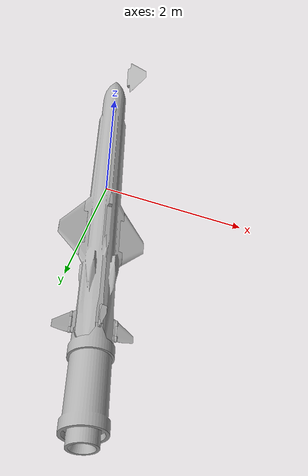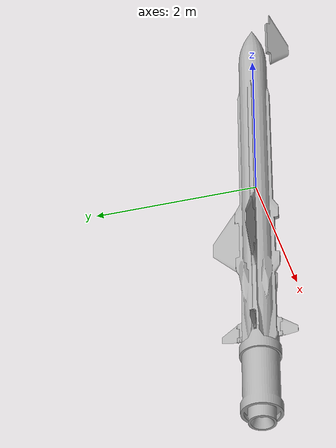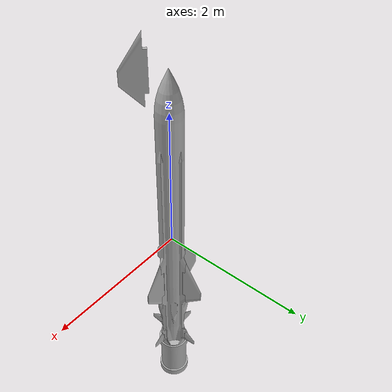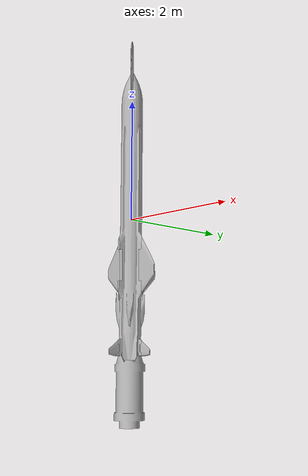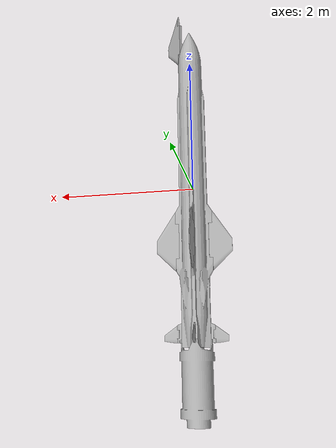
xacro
<?xml version="1.0" ?>
<robot name="exocetMM40" xmlns:xacro="http://www.ros.org/wiki/xacro">

<xacro:include filename="$(find exocet_mm40_description)/urdf/materials.xacro" />
<xacro:include filename="$(find exocet_mm40_description)/urdf/exocetMM40.trans" />
<xacro:include filename="$(find exocet_mm40_description)/urdf/exocetMM40.gazebo" />
<link name="missile_body">
  <inertial>
    <origin xyz="-1.4542551737212967e-07 3.654620797194591e-07 3.282550688316852" rpy="0 0 0"/>
    <mass value="3587.9487221387226"/>
    <inertia ixx="5872.45367" iyy="5872.45367" izz="59.942144" ixy="-0.0" iyz="-0.0" ixz="0.0"/>
  </inertial>
  <visual>
    <origin xyz="0 0 0" rpy="0 0 0"/>
    <geometry>
      <mesh filename="package://exocet_mm40_description/meshes/base_link.stl" scale="0.001 0.001 0.001"/>
    </geometry>
    <material name="silver"/>
  </visual>
  <collision>
    <origin xyz="0 0 0" rpy="0 0 0"/>
    <geometry>
      <mesh filename="package://exocet_mm40_description/meshes/base_link.stl" scale="0.001 0.001 0.001"/>
    </geometry>
  </collision>
</link>

<link name="Fin_1">
  <inertial>
    <origin xyz="-0.04207063686395979 0.042070952020477254 -0.016310158349904347" rpy="0 0 0"/>
    <mass value="3.7760500387858813"/>
    <inertia ixx="0.012879" iyy="0.012879" izz="0.008976" ixy="0.004366" iyz="0.001812" ixz="-0.001812"/>
  </inertial>
  <visual>
    <origin xyz="0.17708 -0.177106 -1.216174" rpy="0 0 0"/>
    <geometry>
      <mesh filename="package://exocet_mm40_description/meshes/Fin_1.stl" scale="0.001 0.001 0.001"/>
    </geometry>
    <material name="silver"/>
  </visual>
  <collision>
    <origin xyz="0.17708 -0.177106 -1.216174" rpy="0 0 0"/>
    <geometry>
      <mesh filename="package://exocet_mm40_description/meshes/Fin_1.stl" scale="0.001 0.001 0.001"/>
    </geometry>
  </collision>
</link>

<link name="FinHolder_1">
  <inertial>
    <origin xyz="-0.025727368252543487 0.025730237574824122 0.010891838967306722" rpy="0 0 0"/>
    <mass value="2.2777645968314193"/>
    <inertia ixx="0.014349" iyy="0.014349" izz="0.0009" ixy="0.000349" iyz="0.0001" ixz="-0.0001"/>
  </inertial>
  <visual>
    <origin xyz="0.13435 -0.134351 -1.216174" rpy="0 0 0"/>
    <geometry>
      <mesh filename="package://exocet_mm40_description/meshes/FinHolder_1.stl" scale="0.001 0.001 0.001"/>
    </geometry>
    <material name="silver"/>
  </visual>
  <collision>
    <origin xyz="0.13435 -0.134351 -1.216174" rpy="0 0 0"/>
    <geometry>
      <mesh filename="package://exocet_mm40_description/meshes/FinHolder_1.stl" scale="0.001 0.001 0.001"/>
    </geometry>
  </collision>
</link>

<link name="Fin_4">
  <inertial>
    <origin xyz="-0.04207073198379488 -0.042070125976482464 -0.016310158349904347" rpy="0 0 0"/>
    <mass value="3.7760500387858813"/>
    <inertia ixx="0.012879" iyy="0.012879" izz="0.008976" ixy="-0.004366" iyz="-0.001812" ixz="-0.001812"/>
  </inertial>
  <visual>
    <origin xyz="0.177106 0.17708 -1.216174" rpy="0 0 0"/>
    <geometry>
      <mesh filename="package://exocet_mm40_description/meshes/Fin_4.stl" scale="0.001 0.001 0.001"/>
    </geometry>
    <material name="silver"/>
  </visual>
  <collision>
    <origin xyz="0.177106 0.17708 -1.216174" rpy="0 0 0"/>
    <geometry>
      <mesh filename="package://exocet_mm40_description/meshes/Fin_4.stl" scale="0.001 0.001 0.001"/>
    </geometry>
  </collision>
</link>

<link name="FinHolder_4">
  <inertial>
    <origin xyz="-0.025731017538143275 -0.025726857365065164 0.010891838967306722" rpy="0 0 0"/>
    <mass value="2.2777645968314193"/>
    <inertia ixx="0.014349" iyy="0.014349" izz="0.0009" ixy="-0.000349" iyz="-0.0001" ixz="-0.0001"/>
  </inertial>
  <visual>
    <origin xyz="0.13435 0.13435 -1.216174" rpy="0 0 0"/>
    <geometry>
      <mesh filename="package://exocet_mm40_description/meshes/FinHolder_4.stl" scale="0.001 0.001 0.001"/>
    </geometry>
    <material name="silver"/>
  </visual>
  <collision>
    <origin xyz="0.13435 0.13435 -1.216174" rpy="0 0 0"/>
    <geometry>
      <mesh filename="package://exocet_mm40_description/meshes/FinHolder_4.stl" scale="0.001 0.001 0.001"/>
    </geometry>
  </collision>
</link>

<link name="Fin_3">
  <inertial>
    <origin xyz="0.04207016492600643 -0.04207040218347563 -0.016310158349879478" rpy="0 0 0"/>
    <mass value="3.7760500387858813"/>
    <inertia ixx="0.012879" iyy="0.012879" izz="0.008976" ixy="0.004366" iyz="-0.001812" ixz="0.001812"/>
  </inertial>
  <visual>
    <origin xyz="-0.177081 0.177105 -1.216174" rpy="0 0 0"/>
    <geometry>
      <mesh filename="package://exocet_mm40_description/meshes/Fin_3.stl" scale="0.001 0.001 0.001"/>
    </geometry>
    <material name="silver"/>
  </visual>
  <collision>
    <origin xyz="-0.177081 0.177105 -1.216174" rpy="0 0 0"/>
    <geometry>
      <mesh filename="package://exocet_mm40_description/meshes/Fin_3.stl" scale="0.001 0.001 0.001"/>
    </geometry>
  </collision>
</link>

<link name="FinHolder_3">
  <inertial>
    <origin xyz="0.025727077401745596 -0.025730506650665064 0.010891838967325151" rpy="0 0 0"/>
    <mass value="2.2777645968314193"/>
    <inertia ixx="0.014349" iyy="0.014349" izz="0.0009" ixy="0.000349" iyz="-0.0001" ixz="0.0001"/>
  </inertial>
  <visual>
    <origin xyz="-0.13435 0.13435 -1.216174" rpy="0 0 0"/>
    <geometry>
      <mesh filename="package://exocet_mm40_description/meshes/FinHolder_3.stl" scale="0.001 0.001 0.001"/>
    </geometry>
    <material name="silver"/>
  </visual>
  <collision>
    <origin xyz="-0.13435 0.13435 -1.216174" rpy="0 0 0"/>
    <geometry>
      <mesh filename="package://exocet_mm40_description/meshes/FinHolder_3.stl" scale="0.001 0.001 0.001"/>
    </geometry>
  </collision>
</link>

<link name="Fin_2">
  <inertial>
    <origin xyz="0.04207044113299932 0.042070856900641496 -0.016310158349879478" rpy="0 0 0"/>
    <mass value="3.7760500387858813"/>
    <inertia ixx="0.012879" iyy="0.012879" izz="0.008976" ixy="-0.004366" iyz="0.001812" ixz="0.001812"/>
  </inertial>
  <visual>
    <origin xyz="-0.177106 -0.17708 -1.216174" rpy="0 0 0"/>
    <geometry>
      <mesh filename="package://exocet_mm40_description/meshes/Fin_2.stl" scale="0.001 0.001 0.001"/>
    </geometry>
    <material name="silver"/>
  </visual>
  <collision>
    <origin xyz="-0.177106 -0.17708 -1.216174" rpy="0 0 0"/>
    <geometry>
      <mesh filename="package://exocet_mm40_description/meshes/Fin_2.stl" scale="0.001 0.001 0.001"/>
    </geometry>
  </collision>
</link>

<link name="FinHolder_2">
  <inertial>
    <origin xyz="0.025730726687345384 0.025726588289224195 0.010891838967325151" rpy="0 0 0"/>
    <mass value="2.2777645968314193"/>
    <inertia ixx="0.014349" iyy="0.014349" izz="0.0009" ixy="-0.000349" iyz="0.0001" ixz="0.0001"/>
  </inertial>
  <visual>
    <origin xyz="-0.13435 -0.134351 -1.216174" rpy="0 0 0"/>
    <geometry>
      <mesh filename="package://exocet_mm40_description/meshes/FinHolder_2.stl" scale="0.001 0.001 0.001"/>
    </geometry>
    <material name="silver"/>
  </visual>
  <collision>
    <origin xyz="-0.13435 -0.134351 -1.216174" rpy="0 0 0"/>
    <geometry>
      <mesh filename="package://exocet_mm40_description/meshes/FinHolder_2.stl" scale="0.001 0.001 0.001"/>
    </geometry>
  </collision>
</link>

<link name="Wing1_1">
  <inertial>
    <origin xyz="-0.06401343964815456 0.0640136633314072 -0.021747597482814296" rpy="0 0 0"/>
    <mass value="42.48976628506711"/>
    <inertia ixx="1.399284" iyy="1.399284" izz="0.250002" ixy="0.120279" iyz="0.044379" ixz="-0.044379"/>
  </inertial>
  <visual>
    <origin xyz="0.1681 -0.1681 -2.521299" rpy="0 0 0"/>
    <geometry>
      <mesh filename="package://exocet_mm40_description/meshes/Wing1_1.stl" scale="0.001 0.001 0.001"/>
    </geometry>
    <material name="silver"/>
  </visual>
  <collision>
    <origin xyz="0.1681 -0.1681 -2.521299" rpy="0 0 0"/>
    <geometry>
      <mesh filename="package://exocet_mm40_description/meshes/Wing1_1.stl" scale="0.001 0.001 0.001"/>
    </geometry>
  </collision>
</link>

<link name="Wing2_1">
  <inertial>
    <origin xyz="-0.06401349424860628 -0.06401389618581307 -0.021747636109048507" rpy="0 0 0"/>
    <mass value="42.48975683460527"/>
    <inertia ixx="1.399282" iyy="1.399282" izz="0.250002" ixy="-0.12028" iyz="-0.044379" ixz="-0.044379"/>
  </inertial>
  <visual>
    <origin xyz="0.1681 0.168099 -2.521299" rpy="0 0 0"/>
    <geometry>
      <mesh filename="package://exocet_mm40_description/meshes/Wing2_1.stl" scale="0.001 0.001 0.001"/>
    </geometry>
    <material name="silver"/>
  </visual>
  <collision>
    <origin xyz="0.1681 0.168099 -2.521299" rpy="0 0 0"/>
    <geometry>
      <mesh filename="package://exocet_mm40_description/meshes/Wing2_1.stl" scale="0.001 0.001 0.001"/>
    </geometry>
  </collision>
</link>

<link name="Wing3_1">
  <inertial>
    <origin xyz="0.0640141532027112 0.06401367009330869 -0.021747611087639562" rpy="0 0 0"/>
    <mass value="42.48976289872378"/>
    <inertia ixx="1.399283" iyy="1.399283" izz="0.250002" ixy="-0.120279" iyz="0.044379" ixz="0.044379"/>
  </inertial>
  <visual>
    <origin xyz="-0.168099 -0.1681 -2.521299" rpy="0 0 0"/>
    <geometry>
      <mesh filename="package://exocet_mm40_description/meshes/Wing3_1.stl" scale="0.001 0.001 0.001"/>
    </geometry>
    <material name="silver"/>
  </visual>
  <collision>
    <origin xyz="-0.168099 -0.1681 -2.521299" rpy="0 0 0"/>
    <geometry>
      <mesh filename="package://exocet_mm40_description/meshes/Wing3_1.stl" scale="0.001 0.001 0.001"/>
    </geometry>
  </collision>
</link>

<link name="Wing4_1">
  <inertial>
    <origin xyz="0.06401417767169987 -0.06401392569423553 -0.021747543358718424" rpy="0 0 0"/>
    <mass value="42.489775944812806"/>
    <inertia ixx="1.399285" iyy="1.399285" izz="0.250002" ixy="0.120279" iyz="-0.044379" ixz="0.04438"/>
  </inertial>
  <visual>
    <origin xyz="-0.168099 0.168099 -2.521299" rpy="0 0 0"/>
    <geometry>
      <mesh filename="package://exocet_mm40_description/meshes/Wing4_1.stl" scale="0.001 0.001 0.001"/>
    </geometry>
    <material name="silver"/>
  </visual>
  <collision>
    <origin xyz="-0.168099 0.168099 -2.521299" rpy="0 0 0"/>
    <geometry>
      <mesh filename="package://exocet_mm40_description/meshes/Wing4_1.stl" scale="0.001 0.001 0.001"/>
    </geometry>
  </collision>
</link>

<link name="Booster_1">
  <inertial>
    <origin xyz="-1.4542535988779183e-07 3.6546207951460027e-07 -0.4892253805514363" rpy="0 0 0"/>
    <mass value="1075.2738598517735"/>
    <inertia ixx="93.247118" iyy="93.247118" izz="25.896806" ixy="0.0" iyz="0.0" ixz="0.0"/>
  </inertial>
  <visual>
    <origin xyz="0.0 -0.0 -1.036174" rpy="0 0 0"/>
    <geometry>
      <mesh filename="package://exocet_mm40_description/meshes/Booster_1.stl" scale="0.001 0.001 0.001"/>
    </geometry>
    <material name="silver"/>
  </visual>
  <collision>
    <origin xyz="0.0 -0.0 -1.036174" rpy="0 0 0"/>
    <geometry>
      <mesh filename="package://exocet_mm40_description/meshes/Booster_1.stl" scale="0.001 0.001 0.001"/>
    </geometry>
  </collision>
</link>
<xacro:property name="fins_limit_absolute" value="0.349066" />
<joint name="fins_fold1" type="revolute">
  <origin xyz="-0.04273 0.042755 0.0" rpy="0 0 0"/>
  <parent link="FinHolder_1"/>
  <child link="Fin_1"/>
  <axis xyz="0.0 -0.0 -1.0"/>
  <limit upper="2.094395" lower="-2.094395" effort="100" velocity="100"/>
</joint>

<joint name="fins_rev1" type="revolute">
  <origin xyz="-0.13435 0.134351 1.216174" rpy="0 0 0"/>
  <parent link="missile_body"/>
  <child link="FinHolder_1"/>
  <axis xyz="-0.707107 0.707107 -0.0"/>
  <limit upper="${fins_limit_absolute}" lower="${-1*fins_limit_absolute}" effort="100" velocity="100"/>
</joint>

<joint name="fins_fold2" type="revolute">
  <origin xyz="-0.042756 -0.04273 0.0" rpy="0 0 0"/>
  <parent link="FinHolder_4"/>
  <child link="Fin_4"/>
  <axis xyz="0.0 0.0 -1.0"/>
  <limit upper="2.094395" lower="-2.094395" effort="100" velocity="100"/>
</joint>

<joint name="fins_rev2" type="revolute">
  <origin xyz="-0.13435 -0.13435 1.216174" rpy="0 0 0"/>
  <parent link="missile_body"/>
  <child link="FinHolder_4"/>
  <axis xyz="-0.707107 -0.707107 -0.0"/>
  <limit upper="${fins_limit_absolute}" lower="${-1*fins_limit_absolute}" effort="100" velocity="100"/>
</joint>

<joint name="fins_fold3" type="revolute">
  <origin xyz="0.042731 -0.042755 0.0" rpy="0 0 0"/>
  <parent link="FinHolder_3"/>
  <child link="Fin_3"/>
  <axis xyz="0.0 0.0 -1.0"/>
  <limit upper="2.094395" lower="-2.094395" effort="100" velocity="100"/>
</joint>

<joint name="fins_rev3" type="revolute">
  <origin xyz="0.13435 -0.13435 1.216174" rpy="0 0 0"/>
  <parent link="missile_body"/>
  <child link="FinHolder_3"/>
  <axis xyz="0.707107 -0.707107 0.0"/>
  <limit upper="${fins_limit_absolute}" lower="${-1*fins_limit_absolute}" effort="100" velocity="100"/>
</joint>

<joint name="fins_fold4" type="revolute">
  <origin xyz="0.042756 0.042729 0.0" rpy="0 0 0"/>
  <parent link="FinHolder_2"/>
  <child link="Fin_2"/>
  <axis xyz="0.0 -0.0 -1.0"/>
  <limit upper="2.094395" lower="-2.094395" effort="100" velocity="100"/>
</joint>

<joint name="fins_rev4" type="revolute">
  <origin xyz="0.13435 0.134351 1.216174" rpy="0 0 0"/>
  <parent link="missile_body"/>
  <child link="FinHolder_2"/>
  <axis xyz="0.707107 0.707107 0.0"/>
  <limit upper="${fins_limit_absolute}" lower="${-1*fins_limit_absolute}" effort="100" velocity="100"/>
</joint>

<joint name="wings_fold1" type="revolute">
  <origin xyz="-0.1681 0.1681 2.521299" rpy="0 0 0"/>
  <parent link="missile_body"/>
  <child link="Wing1_1"/>
  <axis xyz="0.0 -0.0 -1.0"/>
  <limit upper="2.094395" lower="-2.094395" effort="100" velocity="100"/>
</joint>

<joint name="wings_fold2" type="revolute">
  <origin xyz="-0.1681 -0.168099 2.521299" rpy="0 0 0"/>
  <parent link="missile_body"/>
  <child link="Wing2_1"/>
  <axis xyz="0.0 -0.0 -1.0"/>
  <limit upper="2.094395" lower="-2.094395" effort="100" velocity="100"/>
</joint>

<joint name="wings_fold3" type="revolute">
  <origin xyz="0.168099 0.1681 2.521299" rpy="0 0 0"/>
  <parent link="missile_body"/>
  <child link="Wing3_1"/>
  <axis xyz="0.0 -0.0 -1.0"/>
  <limit upper="2.094395" lower="-2.094395" effort="100" velocity="100"/>
</joint>

<joint name="wings_fold4" type="revolute">
  <origin xyz="0.168099 -0.168099 2.521299" rpy="0 0 0"/>
  <parent link="missile_body"/>
  <child link="Wing4_1"/>
  <axis xyz="0.0 -0.0 -1.0"/>
  <limit upper="2.094395" lower="-2.094395" effort="100" velocity="100"/>
</joint>

<joint name="Rigid19" type="fixed">
  <origin xyz="0.0 0.0 1.036174" rpy="0 0 0"/>
  <parent link="missile_body"/>
  <child link="Booster_1"/>
</joint>

</robot>

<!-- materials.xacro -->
<robot name="exocet_mm40" xmlns:xacro="http://www.ros.org/wiki/xacro" >

<material name="silver">
  <color rgba="0.700 0.700 0.700 1.000"/>
</material>

</robot>

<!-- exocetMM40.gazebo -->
<robot name="exocetMM40" xmlns:xacro="http://www.ros.org/wiki/xacro" >

<xacro:property name="body_color" value="Gazebo/Silver" />

<gazebo>
  <plugin name="control" filename="libgazebo_ros_control.so">
      <robotNamespace>/exocetMM40</robotNamespace>
      <robotSimType>gazebo_ros_control/DefaultRobotHWSim</robotSimType>
  </plugin>
</gazebo>

<gazebo>
  <plugin name="missile_control" filename="libmissile_control.so">
    <missile_body>missile_body</missile_body>
    <booster>Booster_1</booster>
    <booster_joint>Rigid19</booster_joint>
  </plugin>
</gazebo>

<gazebo reference="missile_body">
  <material>${body_color}</material>
  <mu1>0.2</mu1>
  <mu2>0.2</mu2>
  <selfCollide>true</selfCollide>
  <gravity>true</gravity>
</gazebo>

<gazebo reference="Fin_1">
  <material>${body_color}</material>
  <mu1>0.2</mu1>
  <mu2>0.2</mu2>
  <selfCollide>true</selfCollide>
</gazebo>

<gazebo reference="FinHolder_1">
  <material>${body_color}</material>
  <mu1>0.01</mu1>
  <mu2>0.01</mu2>
  <selfCollide>true</selfCollide>
</gazebo>

<gazebo reference="Fin_4">
  <material>${body_color}</material>
  <mu1>0.2</mu1>
  <mu2>0.2</mu2>
  <selfCollide>true</selfCollide>
</gazebo>

<gazebo reference="FinHolder_4">
  <material>${body_color}</material>
  <mu1>0.01</mu1>
  <mu2>0.01</mu2>
  <selfCollide>true</selfCollide>
</gazebo>

<gazebo reference="Fin_3">
  <material>${body_color}</material>
  <mu1>0.2</mu1>
  <mu2>0.2</mu2>
  <selfCollide>true</selfCollide>
</gazebo>

<gazebo reference="FinHolder_3">
  <material>${body_color}</material>
  <mu1>0.01</mu1>
  <mu2>0.01</mu2>
  <selfCollide>true</selfCollide>
</gazebo>

<gazebo reference="Fin_2">
  <material>${body_color}</material>
  <mu1>0.2</mu1>
  <mu2>0.2</mu2>
  <selfCollide>true</selfCollide>
</gazebo>

<gazebo reference="FinHolder_2">
  <material>${body_color}</material>
  <mu1>0.01</mu1>
  <mu2>0.01</mu2>
  <selfCollide>true</selfCollide>
</gazebo>

<gazebo reference="Wing1_1">
  <material>${body_color}</material>
  <mu1>0.2</mu1>
  <mu2>0.2</mu2>
  <selfCollide>true</selfCollide>
</gazebo>

<gazebo reference="Wing2_1">
  <material>${body_color}</material>
  <mu1>0.2</mu1>
  <mu2>0.2</mu2>
  <selfCollide>true</selfCollide>
</gazebo>

<gazebo reference="Wing3_1">
  <material>${body_color}</material>
  <mu1>0.2</mu1>
  <mu2>0.2</mu2>
  <selfCollide>true</selfCollide>
</gazebo>

<gazebo reference="Wing4_1">
  <material>${body_color}</material>
  <mu1>0.2</mu1>
  <mu2>0.2</mu2>
  <selfCollide>true</selfCollide>
</gazebo>

<gazebo reference="Booster_1">
  <material>${body_color}</material>
  <mu1>0.2</mu1>
  <mu2>0.2</mu2>
  <selfCollide>true</selfCollide>
</gazebo>

<gazebo reference='Rigid19'>
  <preserveFixedJoint>true</preserveFixedJoint>
</gazebo>

</robot>
